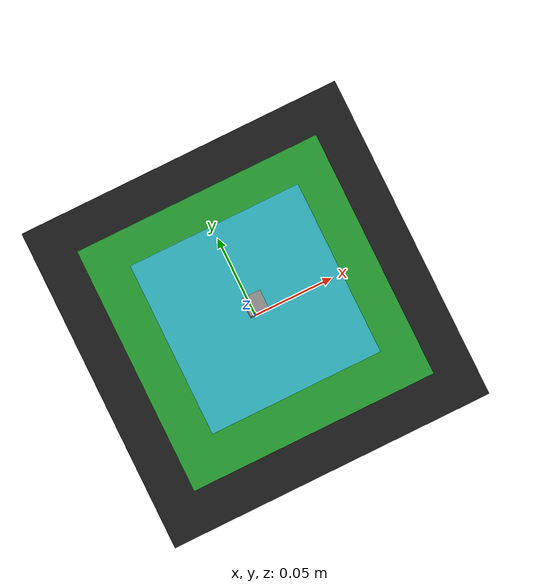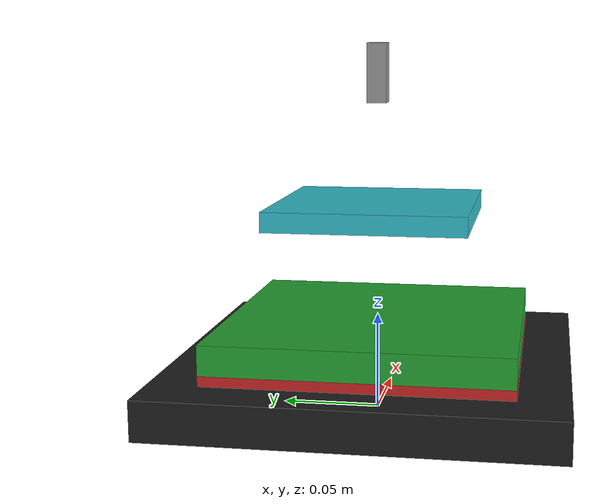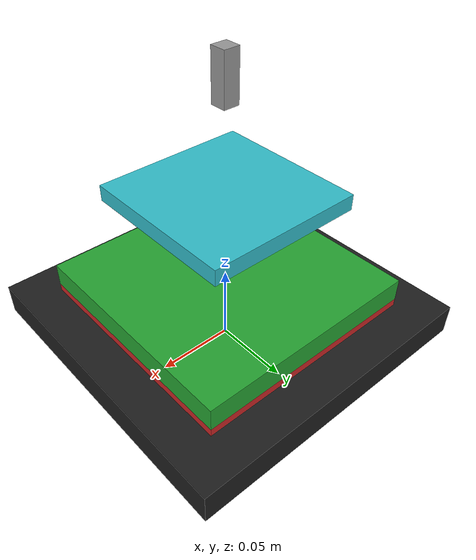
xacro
<robot xmlns:xacro="http://www.ros.org/wiki/xacro">
    <!-- Properties -->
    <xacro:property name="base_lx" value="0.2" />
    <xacro:property name="base_ly" value="0.2" />
    <xacro:property name="base_lz" value="0.02" />
    <xacro:property name="base_mass" value="10" />

    <xacro:property name="camera_lx" value="0.03" />
    <xacro:property name="camera_ly" value="0.01" />
    <xacro:property name="camera_lz" value="0.01" />
    <xacro:property name="camera_mass" value="0.05" />
    <xacro:property name="camera_offset_z" value="0.1" />

    <xacro:property name="x_stage_lx" value="0.15" />
    <xacro:property name="x_stage_ly" value="0.15" />
    <xacro:property name="x_stage_lz" value="0.015" />
    <xacro:property name="x_stage_mass" value="0.1" />
    <xacro:property name="x_stage_lower" value="-0.05" />
    <xacro:property name="x_stage_upper" value="0.05" />

    <xacro:property name="y_stage_lx" value="0.15" />
    <xacro:property name="y_stage_ly" value="0.15" />
    <xacro:property name="y_stage_lz" value="0.015" />
    <xacro:property name="y_stage_mass" value="0.1" />
    <xacro:property name="y_stage_lower" value="-0.05" />
    <xacro:property name="y_stage_upper" value="0.05" />

    <xacro:property name="z_stage_lx" value="0.1" />
    <xacro:property name="z_stage_ly" value="0.1" />
    <xacro:property name="z_stage_lz" value="0.01" />
    <xacro:property name="z_stage_mass" value="0.05" />
    <xacro:property name="z_stage_lower" value="-0.05" />
    <xacro:property name="z_stage_upper" value="0.05" />
    <xacro:property name="z_stage_safety_lim" value="0.005" />

    <xacro:property name="stage_effort" value="9999999999999999" />
    <xacro:property name="stage_vel" value="0.1" />

    <!-- Base -->
    <link name="base_footprint" />
    <link name="base_link">

        <visual>
            <origin xyz="0 0 ${base_lz/2}" rpy="0 0 0" />
            <geometry>
                <box size="${base_lx} ${base_ly} ${base_lz}" />
            </geometry>
            <material name="black" />
        </visual>

        <collision>
            <origin xyz="0 0 ${base_lz/2}" rpy="0 0 0" />
            <geometry>
                <box size="${base_lx} ${base_ly} ${base_lz}" />
            </geometry>
        </collision>

        <xacro:box_inertial lx="${base_lx}" ly="${base_ly}" lz="${base_lz}" m="${base_mass}"
            o_xyz="0 0 ${base_lz/2}" o_rpy="0 0 0" />

    </link>

    <joint name="footprint_base_joint" type="fixed">
        <origin xyz="0 0 ${base_lz/2}" rpy="0 0 0" />
        <parent link="base_footprint" />
        <child link="base_link" />
    </joint>

    <!-- Camera -->
    <link name="camera_link">

        <visual>
            <origin xyz="-${camera_lx/2} 0 0" rpy="0 0 0" />
            <geometry>
                <box size="${camera_lx} ${camera_ly} ${camera_lz}" />
            </geometry>
            <material name="reddishgrey" />
        </visual>

        <collision>
            <origin xyz="-${camera_lx/2} 0 0" rpy="0 0 0" />
            <geometry>
                <box size="${camera_lx} ${camera_ly} ${camera_lz}" />
            </geometry>
        </collision>

        <xacro:box_inertial lx="${camera_lx}" ly="${camera_ly}" lz="${camera_lz}" m="${camera_mass}"
            o_xyz="-${camera_lx/2} 0 0" o_rpy="0 0 0" />

    </link>

    <joint name="base_camera_joint" type="fixed">
        <origin xyz="0 0 ${base_lz/2 + x_stage_lz + y_stage_lz + z_stage_lz + camera_offset_z}"
            rpy="0 ${pi/2} 0" />
        <parent link="base_link" />
        <child link="camera_link" />
    </joint>

    <!-- X Stage -->
    <link name="x_stage_link">

        <visual>
            <origin xyz="0 0 ${x_stage_lz/2}" rpy="0 0 0" />
            <geometry>
                <box size="${x_stage_lx} ${x_stage_ly} ${x_stage_lz}" />
            </geometry>

            <material name="red" />
        </visual>

        <collision>
            <origin xyz="0 0 ${x_stage_lz/2}" rpy="0 0 0" />
            <geometry>
                <box size="${x_stage_lx} ${x_stage_ly} ${x_stage_lz}" />
            </geometry>
        </collision>

        <xacro:box_inertial lx="${x_stage_lx}" ly="${x_stage_ly}" lz="${x_stage_lz}"
            m="${x_stage_mass}"
            o_xyz="0 0 ${x_stage_lz/2}" o_rpy="0 0 0" />

    </link>

    <joint name="base_x_stage_joint" type="prismatic">
        <origin xyz="0 0 ${base_lz/2}" rpy="0 0 0" />
        <parent link="base_link" />
        <child link="x_stage_link" />
        <axis xyz="1 0 0" />
        <limit lower="${x_stage_lower}" upper="${x_stage_upper}" effort="${stage_effort}"
            velocity="${stage_vel}" />
    </joint>

    <!-- Y Stage -->
    <link name="y_stage_link">

        <visual>
            <origin xyz="0 0 ${y_stage_lz/2}" rpy="0 0 0" />
            <geometry>
                <box size="${y_stage_lx} ${y_stage_ly} ${y_stage_lz}" />
            </geometry>
            <material name="green" />
        </visual>

        <collision>
            <origin xyz="0 0 ${y_stage_lz/2}" rpy="0 0 0" />
            <geometry>
                <box size="${y_stage_lx} ${y_stage_ly} ${y_stage_lz}" />
            </geometry>
        </collision>

        <xacro:box_inertial lx="${y_stage_lx}" ly="${y_stage_ly}" lz="${y_stage_lz}"
            m="${y_stage_mass}"
            o_xyz="0 0 ${y_stage_lz/2}" o_rpy="0 0 0" />

    </link>

    <joint name="x_y_stage_joint" type="prismatic">
        <origin xyz="0 0 ${x_stage_lz}" rpy="0 0 0" />
        <parent link="x_stage_link" />
        <child link="y_stage_link" />
        <axis xyz="0 1 0" />
        <limit lower="${y_stage_lower}" upper="${y_stage_upper}" effort="${stage_effort}"
            velocity="${stage_vel}" />
    </joint>

    <!-- Z Stage -->
    <link name="z_stage_link">

        <visual>
            <origin xyz="0 0 ${z_stage_lz/2}" rpy="0 0 0" />
            <geometry>
                <box size="${z_stage_lx} ${z_stage_ly} ${z_stage_lz}" />
            </geometry>
            <material name="cyan" />
        </visual>

        <collision>
            <origin xyz="0 0 ${z_stage_lz/2}" rpy="0 0 0" />
            <geometry>
                <box size="${z_stage_lx} ${z_stage_ly} ${z_stage_lz}" />
            </geometry>
        </collision>

        <xacro:box_inertial lx="${z_stage_lx}" ly="${z_stage_ly}" lz="${z_stage_lz}"
            m="${z_stage_mass}"
            o_xyz="0 0 ${z_stage_lz/2}" o_rpy="0 0 0" />

    </link>

    <joint name="y_z_stage_joint" type="prismatic">
        <origin xyz="0 0 ${y_stage_lz  + -z_stage_lower}" rpy="0 0 0" />
        <parent link="y_stage_link" />
        <child link="z_stage_link" />
        <axis xyz="0 0 1" />
        <limit lower="${z_stage_lower + z_stage_safety_lim}" upper="${z_stage_upper - z_stage_safety_lim}" effort="${stage_effort}"
            velocity="${stage_vel}" />
    </joint>

</robot>
